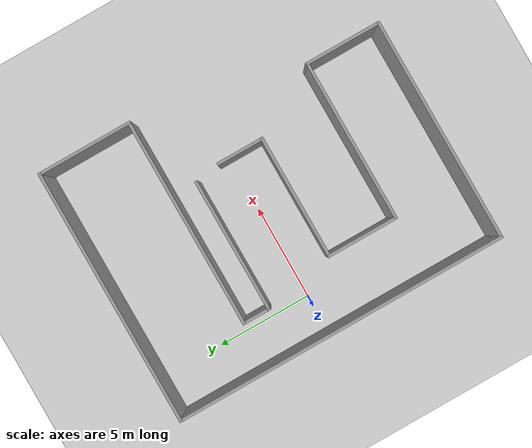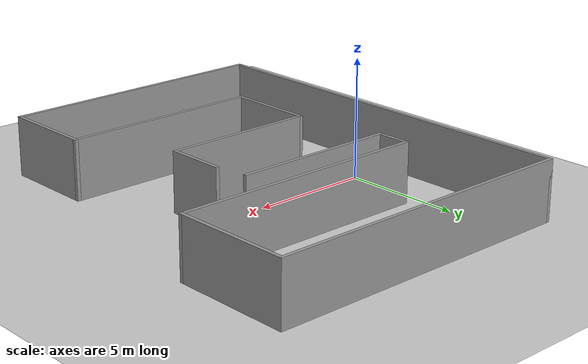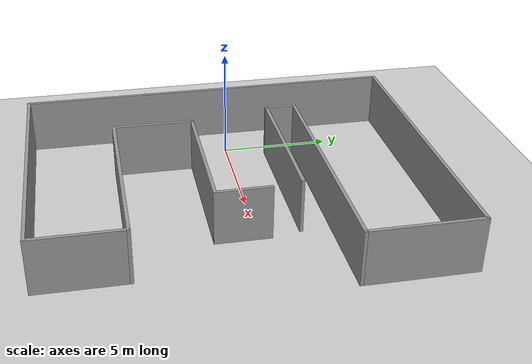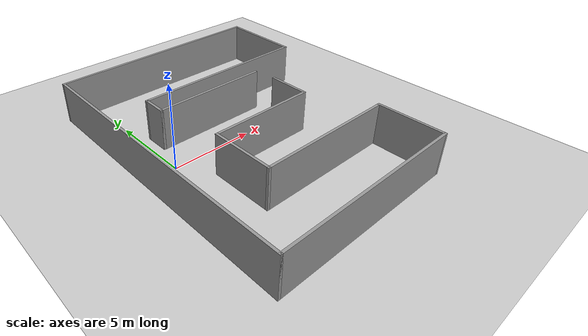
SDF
<sdf version="1.6">
 <world name="default">
  <light name="sun" type="directional">
   <pose>0 0 10 0 -0 0</pose>
   <diffuse>0.8 0.8 0.8 1</diffuse>
   <specular>0.2 0.2 0.2 1</specular>
   <attenuation>
    <range>1000</range>
    <constant>0.9</constant>
    <linear>0.01</linear>
    <quadratic>0.001</quadratic>
   </attenuation>
   <direction>-0.5 0.1 -0.9</direction>
  </light>
  <model name="ground_plane">
   <static>1</static>
   <link name="link">
    <collision name="collision">
     <geometry><plane><normal>0 0 1</normal><size>100 100</size></plane></geometry>
     <surface>
      <contact><collide_bitmask>65535</collide_bitmask></contact>
      <friction><ode><mu>100</mu><mu2>50</mu2></ode></friction>
     </surface>
    </collision>
    <visual name="visual">
     <cast_shadows>0</cast_shadows>
     <geometry><plane><normal>0 0 1</normal><size>100 100</size></plane></geometry>
     <material>
      <script><uri>file://media/materials/scripts/gazebo.material</uri><name>Gazebo/Grey</name></script>
     </material>
    </visual>
   </link>
  </model>
  <gravity>0 0 -9.8</gravity>
  <magnetic_field>6e-06 2.3e-05 -4.2e-05</magnetic_field>
  <atmosphere type="adiabatic"/>
  <physics name="default_physics" default="0" type="ode">
   <max_step_size>0.001</max_step_size>
   <real_time_factor>1</real_time_factor>
   <real_time_update_rate>1000</real_time_update_rate>
  </physics>
  <scene><ambient>0.4 0.4 0.4 1</ambient><background>0.7 0.7 0.7 1</background><shadows>1</shadows></scene>
  <spherical_coordinates>
   <surface_model>EARTH_WGS84</surface_model>
   <latitude_deg>0</latitude_deg>
   <longitude_deg>0</longitude_deg>
   <elevation>0</elevation>
   <heading_deg>0</heading_deg>
  </spherical_coordinates>
  <model name="test_building">
   <pose>4.79841 -0.580859 0 0 -0 0</pose>
   <link name="Wall_10">
    <collision name="Wall_10_Collision">
     <geometry><box><size>13.5 0.15 2.5</size></box></geometry>
     <pose>0 0 1.25 0 -0 0</pose>
    </collision>
    <visual name="Wall_10_Visual">
     <pose>0 0 1.25 0 -0 0</pose>
     <geometry><box><size>13.5 0.15 2.5</size></box></geometry>
     <material>
      <script><uri>file://media/materials/scripts/gazebo.material</uri><name>Gazebo/Grey</name></script>
      <ambient>1 1 1 1</ambient>
     </material>
     <meta><layer>0</layer></meta>
    </visual>
    <pose>1e-06 8.675 0 0 -0 0</pose>
   </link>
   <link name="Wall_11">
    <collision name="Wall_11_Collision">
     <geometry><box><size>5 0.15 2.5</size></box></geometry>
     <pose>0 0 1.25 0 -0 0</pose>
    </collision>
    <visual name="Wall_11_Visual">
     <pose>0 0 1.25 0 -0 0</pose>
     <geometry><box><size>5 0.15 2.5</size></box></geometry>
     <material>
      <script><uri>file://media/materials/scripts/gazebo.material</uri><name>Gazebo/Grey</name></script>
      <ambient>1 1 1 1</ambient>
     </material>
     <meta><layer>0</layer></meta>
    </visual>
    <pose>6.675 6.25 0 0 0 -1.5708</pose>
   </link>
   <link name="Wall_12">
    <collision name="Wall_12_Collision">
     <geometry><box><size>11 0.15 2.5</size></box></geometry>
     <pose>0 0 1.25 0 -0 0</pose>
    </collision>
    <visual name="Wall_12_Visual">
     <pose>0 0 1.25 0 -0 0</pose>
     <geometry><box><size>11 0.15 2.5</size></box></geometry>
     <material>
      <script><uri>file://media/materials/scripts/gazebo.material</uri><name>Gazebo/Grey</name></script>
      <ambient>1 1 1 1</ambient>
     </material>
     <meta><layer>0</layer></meta>
    </visual>
    <pose>1.25 3.825 0 0 -0 3.14159</pose>
   </link>
   <link name="Wall_13">
    <collision name="Wall_13_Collision">
     <geometry><box><size>1.5 0.15 2.5</size></box></geometry>
     <pose>0 0 1.25 0 -0 0</pose>
    </collision>
    <visual name="Wall_13_Visual">
     <pose>0 0 1.25 0 -0 0</pose>
     <geometry><box><size>1.5 0.15 2.5</size></box></geometry>
     <material>
      <script><uri>file://media/materials/scripts/gazebo.material</uri><name>Gazebo/Grey</name></script>
      <ambient>1 1 1 1</ambient>
     </material>
     <meta><layer>0</layer></meta>
    </visual>
    <pose>-4.175 3.15 0 0 0 -1.5708</pose>
   </link>
   <link name="Wall_14">
    <collision name="Wall_14_Collision">
     <geometry><box><size>7 0.15 2.5</size></box></geometry>
     <pose>0 0 1.25 0 -0 0</pose>
    </collision>
    <visual name="Wall_14_Visual">
     <pose>0 0 1.25 0 -0 0</pose>
     <geometry><box><size>7 0.15 2.5</size></box></geometry>
     <material>
      <script><uri>file://media/materials/scripts/gazebo.material</uri><name>Gazebo/Grey</name></script>
      <ambient>1 1 1 1</ambient>
     </material>
     <meta><layer>0</layer></meta>
    </visual>
    <pose>-0.749999 2.475 0 0 -0 0</pose>
   </link>
   <link name="Wall_2">
    <collision name="Wall_2_Collision">
     <geometry><box><size>17.5 0.15 2.5</size></box></geometry>
     <pose>0 0 1.25 0 -0 0</pose>
    </collision>
    <visual name="Wall_2_Visual">
     <pose>0 0 1.25 0 -0 0</pose>
     <geometry><box><size>17.5 0.15 2.5</size></box></geometry>
     <material>
      <script><uri>file://media/materials/scripts/gazebo.material</uri><name>Gazebo/Grey</name></script>
      <ambient>1 1 1 1</ambient>
     </material>
     <meta><layer>0</layer></meta>
    </visual>
    <pose>-6.675 0 0 0 0 -1.5708</pose>
   </link>
   <link name="Wall_3">
    <collision name="Wall_3_Collision">
     <geometry><box><size>11.75 0.15 2.5</size></box></geometry>
     <pose>0 0 1.25 0 -0 0</pose>
    </collision>
    <visual name="Wall_3_Visual">
     <pose>0 0 1.25 0 -0 0</pose>
     <geometry><box><size>11.75 0.15 2.5</size></box></geometry>
     <material>
      <script><uri>file://media/materials/scripts/gazebo.material</uri><name>Gazebo/Grey</name></script>
      <ambient>1 1 1 1</ambient>
     </material>
     <meta><layer>0</layer></meta>
    </visual>
    <pose>-0.874999 -8.675 0 0 -0 0</pose>
   </link>
   <link name="Wall_4">
    <collision name="Wall_4_Collision">
     <geometry><box><size>4 0.15 2.5</size></box></geometry>
     <pose>0 0 1.25 0 -0 0</pose>
    </collision>
    <visual name="Wall_4_Visual">
     <pose>0 0 1.25 0 -0 0</pose>
     <geometry><box><size>4 0.15 2.5</size></box></geometry>
     <material>
      <script><uri>file://media/materials/scripts/gazebo.material</uri><name>Gazebo/Grey</name></script>
      <ambient>1 1 1 1</ambient>
     </material>
     <meta><layer>0</layer></meta>
    </visual>
    <pose>4.925 -6.75 0 0 -0 1.5708</pose>
   </link>
   <link name="Wall_5">
    <collision name="Wall_5_Collision">
     <geometry><box><size>8.5 0.15 2.5</size></box></geometry>
     <pose>0 0 1.25 0 -0 0</pose>
    </collision>
    <visual name="Wall_5_Visual">
     <pose>0 0 1.25 0 -0 0</pose>
     <geometry><box><size>8.5 0.15 2.5</size></box></geometry>
     <material>
      <script><uri>file://media/materials/scripts/gazebo.material</uri><name>Gazebo/Grey</name></script>
      <ambient>1 1 1 1</ambient>
     </material>
     <meta><layer>0</layer></meta>
    </visual>
    <pose>0.750001 -4.825 0 0 -0 3.14159</pose>
   </link>
   <link name="Wall_6">
    <collision name="Wall_6_Collision">
     <geometry><box><size>3.75 0.15 2.5</size></box></geometry>
     <pose>0 0 1.25 0 -0 0</pose>
    </collision>
    <visual name="Wall_6_Visual">
     <pose>0 0 1.25 0 -0 0</pose>
     <geometry><box><size>3.75 0.15 2.5</size></box></geometry>
     <material>
      <script><uri>file://media/materials/scripts/gazebo.material</uri><name>Gazebo/Grey</name></script>
      <ambient>1 1 1 1</ambient>
     </material>
     <meta><layer>0</layer></meta>
    </visual>
    <pose>-3.425 -3.025 0 0 -0 1.5708</pose>
   </link>
   <link name="Wall_7">
    <collision name="Wall_7_Collision">
     <geometry><box><size>6.5 0.15 2.5</size></box></geometry>
     <pose>0 0 1.25 0 -0 0</pose>
    </collision>
    <visual name="Wall_7_Visual">
     <pose>0 0 1.25 0 -0 0</pose>
     <geometry><box><size>6.5 0.15 2.5</size></box></geometry>
     <material>
      <script><uri>file://media/materials/scripts/gazebo.material</uri><name>Gazebo/Grey</name></script>
      <ambient>1 1 1 1</ambient>
     </material>
     <meta><layer>0</layer></meta>
    </visual>
    <pose>-0.249999 -1.225 0 0 -0 0</pose>
   </link>
   <link name="Wall_8">
    <collision name="Wall_8_Collision">
     <geometry><box><size>2.5 0.15 2.5</size></box></geometry>
     <pose>0 0 1.25 0 -0 0</pose>
    </collision>
    <visual name="Wall_8_Visual">
     <pose>0 0 1.25 0 -0 0</pose>
     <geometry><box><size>2.5 0.15 2.5</size></box></geometry>
     <material>
      <script><uri>file://media/materials/scripts/gazebo.material</uri><name>Gazebo/Grey</name></script>
      <ambient>1 1 1 1</ambient>
     </material>
     <meta><layer>0</layer></meta>
    </visual>
    <pose>2.925 -0.05 0 0 -0 1.5708</pose>
   </link>
   <static>1</static>
  </model>
 </world>
</sdf>
